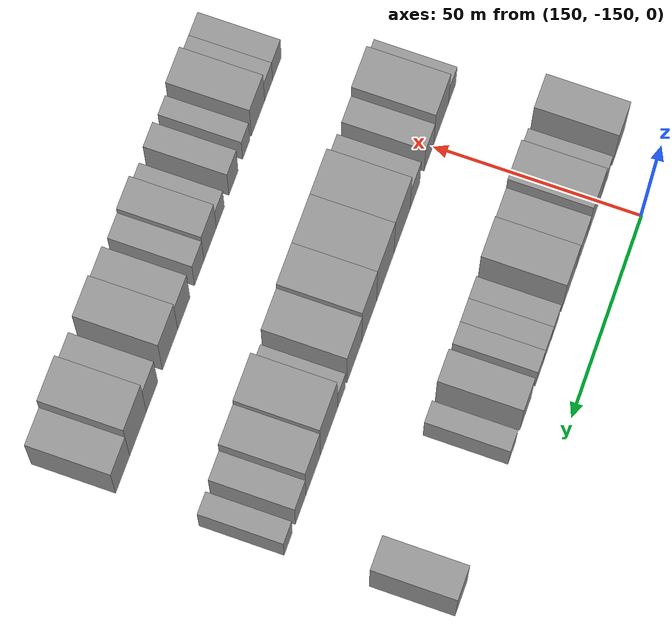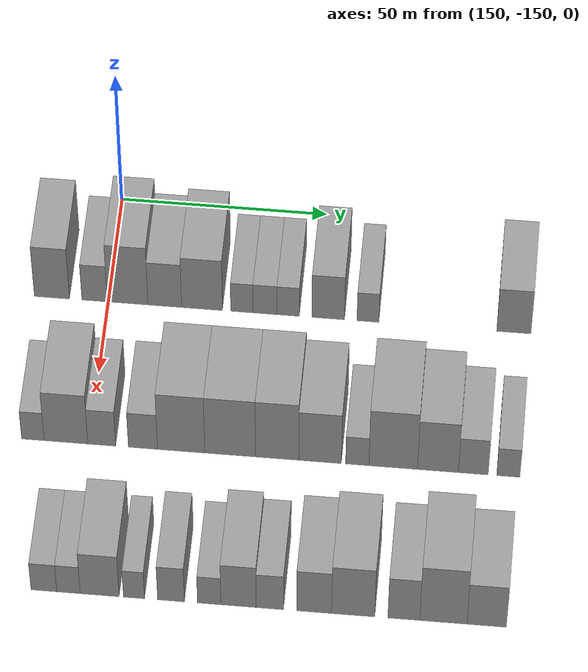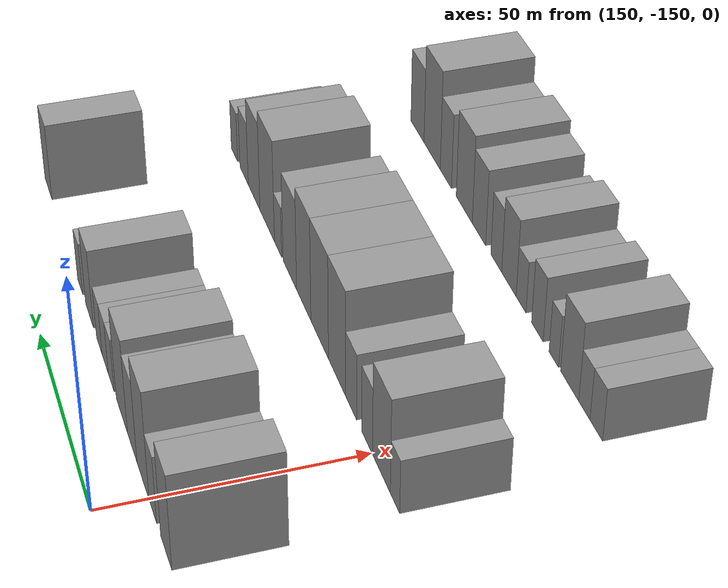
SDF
<sdf version="1.6">
 <world name="default">
  <model name="building_460">
   <static>1</static>
   <pose>170.0000 -163.5722 0 0.000000 0.000000 0.000000</pose>
   <link name="link">
    <pose>0 0 10.50 0 0 0</pose>
    <collision name="collision"><geometry><box><size>20.0000 8.4324 21.0000</size></box></geometry></collision>
    <visual name="visual">
     <cast_shadows>0</cast_shadows>
     <geometry><box><size>20.0000 8.4324 21.0000</size></box></geometry>
     <material>
      <script>
       <uri>model://grey_wall/materials/scripts</uri>
       <uri>model://grey_wall/materials/textures</uri>
       <name>vrc/grey_wall</name>
      </script>
     </material>
    </visual>
   </link>
  </model>
  <model name="building_461">
   <static>1</static>
   <pose>170.0000 -153.2986 0 0.000000 0.000000 0.000000</pose>
   <link name="link">
    <pose>0 0 7.50 0 0 0</pose>
    <collision name="collision"><geometry><box><size>20.0000 6.1147 15.0000</size></box></geometry></collision>
    <visual name="visual">
     <cast_shadows>0</cast_shadows>
     <geometry><box><size>20.0000 6.1147 15.0000</size></box></geometry>
     <material>
      <script>
       <uri>model://grey_wall/materials/scripts</uri>
       <uri>model://grey_wall/materials/textures</uri>
       <name>vrc/grey_wall</name>
      </script>
     </material>
    </visual>
   </link>
  </model>
  <model name="building_462">
   <static>1</static>
   <pose>170.0000 -145.3566 0 0.000000 0.000000 0.000000</pose>
   <link name="link">
    <pose>0 0 12.00 0 0 0</pose>
    <collision name="collision"><geometry><box><size>20.0000 9.7693 24.0000</size></box></geometry></collision>
    <visual name="visual">
     <cast_shadows>0</cast_shadows>
     <geometry><box><size>20.0000 9.7693 24.0000</size></box></geometry>
     <material>
      <script>
       <uri>model://grey_wall/materials/scripts</uri>
       <uri>model://grey_wall/materials/textures</uri>
       <name>vrc/grey_wall</name>
      </script>
     </material>
    </visual>
   </link>
  </model>
  <model name="building_463">
   <static>1</static>
   <pose>170.0000 -136.4211 0 0.000000 0.000000 0.000000</pose>
   <link name="link">
    <pose>0 0 9.00 0 0 0</pose>
    <collision name="collision"><geometry><box><size>20.0000 8.1017 18.0000</size></box></geometry></collision>
    <visual name="visual">
     <cast_shadows>0</cast_shadows>
     <geometry><box><size>20.0000 8.1017 18.0000</size></box></geometry>
     <material>
      <script>
       <uri>model://grey_wall/materials/scripts</uri>
       <uri>model://grey_wall/materials/textures</uri>
       <name>vrc/grey_wall</name>
      </script>
     </material>
    </visual>
   </link>
  </model>
  <model name="building_464">
   <static>1</static>
   <pose>170.0000 -127.4775 0 0.000000 0.000000 0.000000</pose>
   <link name="link">
    <pose>0 0 10.50 0 0 0</pose>
    <collision name="collision"><geometry><box><size>20.0000 9.7855 21.0000</size></box></geometry></collision>
    <visual name="visual">
     <cast_shadows>0</cast_shadows>
     <geometry><box><size>20.0000 9.7855 21.0000</size></box></geometry>
     <material>
      <script>
       <uri>model://grey_wall/materials/scripts</uri>
       <uri>model://grey_wall/materials/textures</uri>
       <name>vrc/grey_wall</name>
      </script>
     </material>
    </visual>
   </link>
  </model>
  <model name="building_465">
   <static>1</static>
   <pose>170.0000 -117.9126 0 0.000000 0.000000 0.000000</pose>
   <link name="link">
    <pose>0 0 6.00 0 0 0</pose>
    <collision name="collision"><geometry><box><size>20.0000 5.3442 12.0000</size></box></geometry></collision>
    <visual name="visual">
     <cast_shadows>0</cast_shadows>
     <geometry><box><size>20.0000 5.3442 12.0000</size></box></geometry>
     <material>
      <script>
       <uri>model://grey_wall/materials/scripts</uri>
       <uri>model://grey_wall/materials/textures</uri>
       <name>vrc/grey_wall</name>
      </script>
     </material>
    </visual>
   </link>
  </model>
  <model name="building_466">
   <static>1</static>
   <pose>170.0000 -112.3767 0 0.000000 0.000000 0.000000</pose>
   <link name="link">
    <pose>0 0 6.00 0 0 0</pose>
    <collision name="collision"><geometry><box><size>20.0000 5.7277 12.0000</size></box></geometry></collision>
    <visual name="visual">
     <cast_shadows>0</cast_shadows>
     <geometry><box><size>20.0000 5.7277 12.0000</size></box></geometry>
     <material>
      <script>
       <uri>model://grey_wall/materials/scripts</uri>
       <uri>model://grey_wall/materials/textures</uri>
       <name>vrc/grey_wall</name>
      </script>
     </material>
    </visual>
   </link>
  </model>
  <model name="building_467">
   <static>1</static>
   <pose>170.0000 -106.8365 0 0.000000 0.000000 0.000000</pose>
   <link name="link">
    <pose>0 0 6.00 0 0 0</pose>
    <collision name="collision"><geometry><box><size>20.0000 5.3526 12.0000</size></box></geometry></collision>
    <visual name="visual">
     <cast_shadows>0</cast_shadows>
     <geometry><box><size>20.0000 5.3526 12.0000</size></box></geometry>
     <material>
      <script>
       <uri>model://grey_wall/materials/scripts</uri>
       <uri>model://grey_wall/materials/textures</uri>
       <name>vrc/grey_wall</name>
      </script>
     </material>
    </visual>
   </link>
  </model>
  <model name="building_468">
   <static>1</static>
   <pose>170.0000 -97.2520 0 0.000000 0.000000 0.000000</pose>
   <link name="link">
    <pose>0 0 9.00 0 0 0</pose>
    <collision name="collision"><geometry><box><size>20.0000 7.8163 18.0000</size></box></geometry></collision>
    <visual name="visual">
     <cast_shadows>0</cast_shadows>
     <geometry><box><size>20.0000 7.8163 18.0000</size></box></geometry>
     <material>
      <script>
       <uri>model://grey_wall/materials/scripts</uri>
       <uri>model://grey_wall/materials/textures</uri>
       <name>vrc/grey_wall</name>
      </script>
     </material>
    </visual>
   </link>
  </model>
  <model name="building_469">
   <static>1</static>
   <pose>170.0000 -87.7280 0 0.000000 0.000000 0.000000</pose>
   <link name="link">
    <pose>0 0 6.00 0 0 0</pose>
    <collision name="collision"><geometry><box><size>20.0000 5.2318 12.0000</size></box></geometry></collision>
    <visual name="visual">
     <cast_shadows>0</cast_shadows>
     <geometry><box><size>20.0000 5.2318 12.0000</size></box></geometry>
     <material>
      <script>
       <uri>model://grey_wall/materials/scripts</uri>
       <uri>model://grey_wall/materials/textures</uri>
       <name>vrc/grey_wall</name>
      </script>
     </material>
    </visual>
   </link>
  </model>
  <model name="building_470">
   <static>1</static>
   <pose>170.0000 -52.9093 0 0.000000 0.000000 0.000000</pose>
   <link name="link">
    <pose>0 0 9.00 0 0 0</pose>
    <collision name="collision"><geometry><box><size>20.0000 8.1352 18.0000</size></box></geometry></collision>
    <visual name="visual">
     <cast_shadows>0</cast_shadows>
     <geometry><box><size>20.0000 8.1352 18.0000</size></box></geometry>
     <material>
      <script>
       <uri>model://grey_wall/materials/scripts</uri>
       <uri>model://grey_wall/materials/textures</uri>
       <name>vrc/grey_wall</name>
      </script>
     </material>
    </visual>
   </link>
  </model>
  <model name="building_597">
   <static>1</static>
   <pose>210.0000 -163.2305 0 0.000000 0.000000 0.000000</pose>
   <link name="link">
    <pose>0 0 6.00 0 0 0</pose>
    <collision name="collision"><geometry><box><size>20.0000 5.2803 12.0000</size></box></geometry></collision>
    <visual name="visual">
     <cast_shadows>0</cast_shadows>
     <geometry><box><size>20.0000 5.2803 12.0000</size></box></geometry>
     <material>
      <script>
       <uri>model://grey_wall/materials/scripts</uri>
       <uri>model://grey_wall/materials/textures</uri>
       <name>vrc/grey_wall</name>
      </script>
     </material>
    </visual>
   </link>
  </model>
  <model name="building_598">
   <static>1</static>
   <pose>210.0000 -155.4444 0 0.000000 0.000000 0.000000</pose>
   <link name="link">
    <pose>0 0 10.50 0 0 0</pose>
    <collision name="collision"><geometry><box><size>20.0000 10.2920 21.0000</size></box></geometry></collision>
    <visual name="visual">
     <cast_shadows>0</cast_shadows>
     <geometry><box><size>20.0000 10.2920 21.0000</size></box></geometry>
     <material>
      <script>
       <uri>model://grey_wall/materials/scripts</uri>
       <uri>model://grey_wall/materials/textures</uri>
       <name>vrc/grey_wall</name>
      </script>
     </material>
    </visual>
   </link>
  </model>
  <model name="building_599">
   <static>1</static>
   <pose>210.0000 -147.0232 0 0.000000 0.000000 0.000000</pose>
   <link name="link">
    <pose>0 0 7.50 0 0 0</pose>
    <collision name="collision"><geometry><box><size>20.0000 6.5503 15.0000</size></box></geometry></collision>
    <visual name="visual">
     <cast_shadows>0</cast_shadows>
     <geometry><box><size>20.0000 6.5503 15.0000</size></box></geometry>
     <material>
      <script>
       <uri>model://grey_wall/materials/scripts</uri>
       <uri>model://grey_wall/materials/textures</uri>
       <name>vrc/grey_wall</name>
      </script>
     </material>
    </visual>
   </link>
  </model>
  <model name="building_600">
   <static>1</static>
   <pose>210.0000 -137.3284 0 0.000000 0.000000 0.000000</pose>
   <link name="link">
    <pose>0 0 7.50 0 0 0</pose>
    <collision name="collision"><geometry><box><size>20.0000 6.8393 15.0000</size></box></geometry></collision>
    <visual name="visual">
     <cast_shadows>0</cast_shadows>
     <geometry><box><size>20.0000 6.8393 15.0000</size></box></geometry>
     <material>
      <script>
       <uri>model://grey_wall/materials/scripts</uri>
       <uri>model://grey_wall/materials/textures</uri>
       <name>vrc/grey_wall</name>
      </script>
     </material>
    </visual>
   </link>
  </model>
  <model name="building_601">
   <static>1</static>
   <pose>210.0000 -128.3448 0 0.000000 0.000000 0.000000</pose>
   <link name="link">
    <pose>0 0 12.00 0 0 0</pose>
    <collision name="collision"><geometry><box><size>20.0000 11.1278 24.0000</size></box></geometry></collision>
    <visual name="visual">
     <cast_shadows>0</cast_shadows>
     <geometry><box><size>20.0000 11.1278 24.0000</size></box></geometry>
     <material>
      <script>
       <uri>model://grey_wall/materials/scripts</uri>
       <uri>model://grey_wall/materials/textures</uri>
       <name>vrc/grey_wall</name>
      </script>
     </material>
    </visual>
   </link>
  </model>
  <model name="building_602">
   <static>1</static>
   <pose>210.0000 -116.8446 0 0.000000 0.000000 0.000000</pose>
   <link name="link">
    <pose>0 0 12.00 0 0 0</pose>
    <collision name="collision"><geometry><box><size>20.0000 11.8727 24.0000</size></box></geometry></collision>
    <visual name="visual">
     <cast_shadows>0</cast_shadows>
     <geometry><box><size>20.0000 11.8727 24.0000</size></box></geometry>
     <material>
      <script>
       <uri>model://grey_wall/materials/scripts</uri>
       <uri>model://grey_wall/materials/textures</uri>
       <name>vrc/grey_wall</name>
      </script>
     </material>
    </visual>
   </link>
  </model>
  <model name="building_603">
   <static>1</static>
   <pose>210.0000 -105.8497 0 0.000000 0.000000 0.000000</pose>
   <link name="link">
    <pose>0 0 12.00 0 0 0</pose>
    <collision name="collision"><geometry><box><size>20.0000 10.1169 24.0000</size></box></geometry></collision>
    <visual name="visual">
     <cast_shadows>0</cast_shadows>
     <geometry><box><size>20.0000 10.1169 24.0000</size></box></geometry>
     <material>
      <script>
       <uri>model://grey_wall/materials/scripts</uri>
       <uri>model://grey_wall/materials/textures</uri>
       <name>vrc/grey_wall</name>
      </script>
     </material>
    </visual>
   </link>
  </model>
  <model name="building_604">
   <static>1</static>
   <pose>210.0000 -95.7958 0 0.000000 0.000000 0.000000</pose>
   <link name="link">
    <pose>0 0 10.50 0 0 0</pose>
    <collision name="collision"><geometry><box><size>20.0000 9.9910 21.0000</size></box></geometry></collision>
    <visual name="visual">
     <cast_shadows>0</cast_shadows>
     <geometry><box><size>20.0000 9.9910 21.0000</size></box></geometry>
     <material>
      <script>
       <uri>model://grey_wall/materials/scripts</uri>
       <uri>model://grey_wall/materials/textures</uri>
       <name>vrc/grey_wall</name>
      </script>
     </material>
    </visual>
   </link>
  </model>
  <model name="building_605">
   <static>1</static>
   <pose>210.0000 -87.0815 0 0.000000 0.000000 0.000000</pose>
   <link name="link">
    <pose>0 0 6.00 0 0 0</pose>
    <collision name="collision"><geometry><box><size>20.0000 5.4375 12.0000</size></box></geometry></collision>
    <visual name="visual">
     <cast_shadows>0</cast_shadows>
     <geometry><box><size>20.0000 5.4375 12.0000</size></box></geometry>
     <material>
      <script>
       <uri>model://grey_wall/materials/scripts</uri>
       <uri>model://grey_wall/materials/textures</uri>
       <name>vrc/grey_wall</name>
      </script>
     </material>
    </visual>
   </link>
  </model>
  <model name="building_606">
   <static>1</static>
   <pose>210.0000 -78.6759 0 0.000000 0.000000 0.000000</pose>
   <link name="link">
    <pose>0 0 12.00 0 0 0</pose>
    <collision name="collision"><geometry><box><size>20.0000 11.3737 24.0000</size></box></geometry></collision>
    <visual name="visual">
     <cast_shadows>0</cast_shadows>
     <geometry><box><size>20.0000 11.3737 24.0000</size></box></geometry>
     <material>
      <script>
       <uri>model://grey_wall/materials/scripts</uri>
       <uri>model://grey_wall/materials/textures</uri>
       <name>vrc/grey_wall</name>
      </script>
     </material>
    </visual>
   </link>
  </model>
  <model name="building_607">
   <static>1</static>
   <pose>210.0000 -68.2204 0 0.000000 0.000000 0.000000</pose>
   <link name="link">
    <pose>0 0 10.50 0 0 0</pose>
    <collision name="collision"><geometry><box><size>20.0000 9.5373 21.0000</size></box></geometry></collision>
    <visual name="visual">
     <cast_shadows>0</cast_shadows>
     <geometry><box><size>20.0000 9.5373 21.0000</size></box></geometry>
     <material>
      <script>
       <uri>model://grey_wall/materials/scripts</uri>
       <uri>model://grey_wall/materials/textures</uri>
       <name>vrc/grey_wall</name>
      </script>
     </material>
    </visual>
   </link>
  </model>
  <model name="building_608">
   <static>1</static>
   <pose>210.0000 -59.9729 0 0.000000 0.000000 0.000000</pose>
   <link name="link">
    <pose>0 0 7.50 0 0 0</pose>
    <collision name="collision"><geometry><box><size>20.0000 6.9576 15.0000</size></box></geometry></collision>
    <visual name="visual">
     <cast_shadows>0</cast_shadows>
     <geometry><box><size>20.0000 6.9576 15.0000</size></box></geometry>
     <material>
      <script>
       <uri>model://grey_wall/materials/scripts</uri>
       <uri>model://grey_wall/materials/textures</uri>
       <name>vrc/grey_wall</name>
      </script>
     </material>
    </visual>
   </link>
  </model>
  <model name="building_609">
   <static>1</static>
   <pose>210.0000 -51.8099 0 0.000000 0.000000 0.000000</pose>
   <link name="link">
    <pose>0 0 6.00 0 0 0</pose>
    <collision name="collision"><geometry><box><size>20.0000 5.3685 12.0000</size></box></geometry></collision>
    <visual name="visual">
     <cast_shadows>0</cast_shadows>
     <geometry><box><size>20.0000 5.3685 12.0000</size></box></geometry>
     <material>
      <script>
       <uri>model://grey_wall/materials/scripts</uri>
       <uri>model://grey_wall/materials/textures</uri>
       <name>vrc/grey_wall</name>
      </script>
     </material>
    </visual>
   </link>
  </model>
  <model name="building_740">
   <static>1</static>
   <pose>250.0000 -155.7735 0 0.000000 0.000000 0.000000</pose>
   <link name="link">
    <pose>0 0 6.00 0 0 0</pose>
    <collision name="collision"><geometry><box><size>20.0000 5.9088 12.0000</size></box></geometry></collision>
    <visual name="visual">
     <cast_shadows>0</cast_shadows>
     <geometry><box><size>20.0000 5.9088 12.0000</size></box></geometry>
     <material>
      <script>
       <uri>model://grey_wall/materials/scripts</uri>
       <uri>model://grey_wall/materials/textures</uri>
       <name>vrc/grey_wall</name>
      </script>
     </material>
    </visual>
   </link>
  </model>
  <model name="building_741">
   <static>1</static>
   <pose>250.0000 -150.1231 0 0.000000 0.000000 0.000000</pose>
   <link name="link">
    <pose>0 0 6.00 0 0 0</pose>
    <collision name="collision"><geometry><box><size>20.0000 5.3919 12.0000</size></box></geometry></collision>
    <visual name="visual">
     <cast_shadows>0</cast_shadows>
     <geometry><box><size>20.0000 5.3919 12.0000</size></box></geometry>
     <material>
      <script>
       <uri>model://grey_wall/materials/scripts</uri>
       <uri>model://grey_wall/materials/textures</uri>
       <name>vrc/grey_wall</name>
      </script>
     </material>
    </visual>
   </link>
  </model>
  <model name="building_742">
   <static>1</static>
   <pose>250.0000 -142.9449 0 0.000000 0.000000 0.000000</pose>
   <link name="link">
    <pose>0 0 9.00 0 0 0</pose>
    <collision name="collision"><geometry><box><size>20.0000 8.9645 18.0000</size></box></geometry></collision>
    <visual name="visual">
     <cast_shadows>0</cast_shadows>
     <geometry><box><size>20.0000 8.9645 18.0000</size></box></geometry>
     <material>
      <script>
       <uri>model://grey_wall/materials/scripts</uri>
       <uri>model://grey_wall/materials/textures</uri>
       <name>vrc/grey_wall</name>
      </script>
     </material>
    </visual>
   </link>
  </model>
  <model name="building_743">
   <static>1</static>
   <pose>250.0000 -135.0396 0 0.000000 0.000000 0.000000</pose>
   <link name="link">
    <pose>0 0 6.00 0 0 0</pose>
    <collision name="collision"><geometry><box><size>20.0000 4.8462 12.0000</size></box></geometry></collision>
    <visual name="visual">
     <cast_shadows>0</cast_shadows>
     <geometry><box><size>20.0000 4.8462 12.0000</size></box></geometry>
     <material>
      <script>
       <uri>model://grey_wall/materials/scripts</uri>
       <uri>model://grey_wall/materials/textures</uri>
       <name>vrc/grey_wall</name>
      </script>
     </material>
    </visual>
   </link>
  </model>
  <model name="building_744">
   <static>1</static>
   <pose>250.0000 -126.5398 0 0.000000 0.000000 0.000000</pose>
   <link name="link">
    <pose>0 0 7.50 0 0 0</pose>
    <collision name="collision"><geometry><box><size>20.0000 6.1533 15.0000</size></box></geometry></collision>
    <visual name="visual">
     <cast_shadows>0</cast_shadows>
     <geometry><box><size>20.0000 6.1533 15.0000</size></box></geometry>
     <material>
      <script>
       <uri>model://grey_wall/materials/scripts</uri>
       <uri>model://grey_wall/materials/textures</uri>
       <name>vrc/grey_wall</name>
      </script>
     </material>
    </visual>
   </link>
  </model>
  <model name="building_745">
   <static>1</static>
   <pose>250.0000 -117.7865 0 0.000000 0.000000 0.000000</pose>
   <link name="link">
    <pose>0 0 6.00 0 0 0</pose>
    <collision name="collision"><geometry><box><size>20.0000 5.3533 12.0000</size></box></geometry></collision>
    <visual name="visual">
     <cast_shadows>0</cast_shadows>
     <geometry><box><size>20.0000 5.3533 12.0000</size></box></geometry>
     <material>
      <script>
       <uri>model://grey_wall/materials/scripts</uri>
       <uri>model://grey_wall/materials/textures</uri>
       <name>vrc/grey_wall</name>
      </script>
     </material>
    </visual>
   </link>
  </model>
  <model name="building_746">
   <static>1</static>
   <pose>250.0000 -111.0542 0 0.000000 0.000000 0.000000</pose>
   <link name="link">
    <pose>0 0 9.00 0 0 0</pose>
    <collision name="collision"><geometry><box><size>20.0000 8.1112 18.0000</size></box></geometry></collision>
    <visual name="visual">
     <cast_shadows>0</cast_shadows>
     <geometry><box><size>20.0000 8.1112 18.0000</size></box></geometry>
     <material>
      <script>
       <uri>model://grey_wall/materials/scripts</uri>
       <uri>model://grey_wall/materials/textures</uri>
       <name>vrc/grey_wall</name>
      </script>
     </material>
    </visual>
   </link>
  </model>
  <model name="building_747">
   <static>1</static>
   <pose>250.0000 -103.8744 0 0.000000 0.000000 0.000000</pose>
   <link name="link">
    <pose>0 0 7.50 0 0 0</pose>
    <collision name="collision"><geometry><box><size>20.0000 6.2485 15.0000</size></box></geometry></collision>
    <visual name="visual">
     <cast_shadows>0</cast_shadows>
     <geometry><box><size>20.0000 6.2485 15.0000</size></box></geometry>
     <material>
      <script>
       <uri>model://grey_wall/materials/scripts</uri>
       <uri>model://grey_wall/materials/textures</uri>
       <name>vrc/grey_wall</name>
      </script>
     </material>
    </visual>
   </link>
  </model>
  <model name="building_748">
   <static>1</static>
   <pose>250.0000 -93.7494 0 0.000000 0.000000 0.000000</pose>
   <link name="link">
    <pose>0 0 9.00 0 0 0</pose>
    <collision name="collision"><geometry><box><size>20.0000 8.0015 18.0000</size></box></geometry></collision>
    <visual name="visual">
     <cast_shadows>0</cast_shadows>
     <geometry><box><size>20.0000 8.0015 18.0000</size></box></geometry>
     <material>
      <script>
       <uri>model://grey_wall/materials/scripts</uri>
       <uri>model://grey_wall/materials/textures</uri>
       <name>vrc/grey_wall</name>
      </script>
     </material>
    </visual>
   </link>
  </model>
  <model name="building_749">
   <static>1</static>
   <pose>250.0000 -84.8059 0 0.000000 0.000000 0.000000</pose>
   <link name="link">
    <pose>0 0 10.50 0 0 0</pose>
    <collision name="collision"><geometry><box><size>20.0000 9.8854 21.0000</size></box></geometry></collision>
    <visual name="visual">
     <cast_shadows>0</cast_shadows>
     <geometry><box><size>20.0000 9.8854 21.0000</size></box></geometry>
     <material>
      <script>
       <uri>model://grey_wall/materials/scripts</uri>
       <uri>model://grey_wall/materials/textures</uri>
       <name>vrc/grey_wall</name>
      </script>
     </material>
    </visual>
   </link>
  </model>
  <model name="building_750">
   <static>1</static>
   <pose>250.0000 -73.2208 0 0.000000 0.000000 0.000000</pose>
   <link name="link">
    <pose>0 0 9.00 0 0 0</pose>
    <collision name="collision"><geometry><box><size>20.0000 7.2849 18.0000</size></box></geometry></collision>
    <visual name="visual">
     <cast_shadows>0</cast_shadows>
     <geometry><box><size>20.0000 7.2849 18.0000</size></box></geometry>
     <material>
      <script>
       <uri>model://grey_wall/materials/scripts</uri>
       <uri>model://grey_wall/materials/textures</uri>
       <name>vrc/grey_wall</name>
      </script>
     </material>
    </visual>
   </link>
  </model>
  <model name="building_751">
   <static>1</static>
   <pose>250.0000 -64.2069 0 0.000000 0.000000 0.000000</pose>
   <link name="link">
    <pose>0 0 12.00 0 0 0</pose>
    <collision name="collision"><geometry><box><size>20.0000 10.7428 24.0000</size></box></geometry></collision>
    <visual name="visual">
     <cast_shadows>0</cast_shadows>
     <geometry><box><size>20.0000 10.7428 24.0000</size></box></geometry>
     <material>
      <script>
       <uri>model://grey_wall/materials/scripts</uri>
       <uri>model://grey_wall/materials/textures</uri>
       <name>vrc/grey_wall</name>
      </script>
     </material>
    </visual>
   </link>
  </model>
  <model name="building_752">
   <static>1</static>
   <pose>250.0000 -54.3466 0 0.000000 0.000000 0.000000</pose>
   <link name="link">
    <pose>0 0 9.00 0 0 0</pose>
    <collision name="collision"><geometry><box><size>20.0000 8.9780 18.0000</size></box></geometry></collision>
    <visual name="visual">
     <cast_shadows>0</cast_shadows>
     <geometry><box><size>20.0000 8.9780 18.0000</size></box></geometry>
     <material>
      <script>
       <uri>model://grey_wall/materials/scripts</uri>
       <uri>model://grey_wall/materials/textures</uri>
       <name>vrc/grey_wall</name>
      </script>
     </material>
    </visual>
   </link>
  </model>
 </world>
</sdf>
